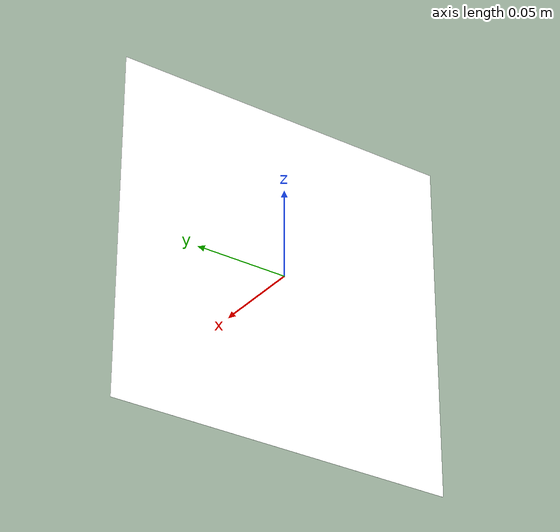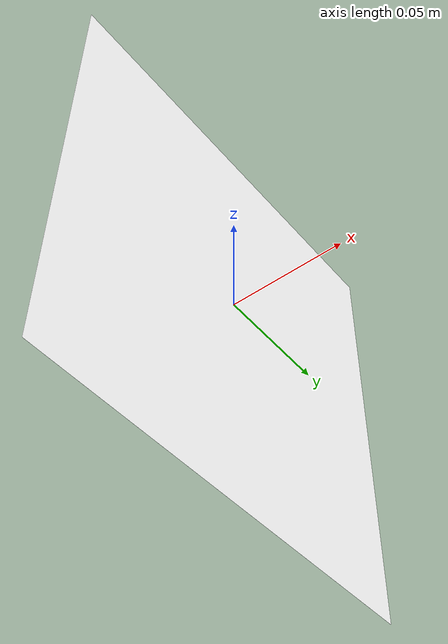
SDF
<?xml version="1.0"?>
<sdf version="1.6">
  <model name="AprilTag">
    <pose>0 0 0 0 0 0</pose>
    <link name="AprilTag">
      <collision name="body_collision">
        <geometry>
          <box>
            <size>1 1 1</size>
          </box>
        </geometry>
      </collision>
      <pose frame=''>0 0 0 0 0 3.14</pose>
      <visual name="body_visual">
        <geometry>
          <box>
            <size>1e-05 0.188 0.188</size>
          </box>
        </geometry>
        <material>
              <script>
                  <uri>model://aprilTag/materials/scripts</uri>
                  <uri>model://aprilTag/materials/textures</uri>
                  <name>TagTexture</name>
              </script>
       <ambient>1 1 1 1</ambient>
       <diffuse>1 1 1 1</diffuse>
       <specular>0 0 0 1</specular>
       <emissive>1 1 1 0</emissive>
       <shader type='vertex'>
         <normal_map>__default__</normal_map>
       </shader>
     </material>
      </visual>
    </link>
  </model>
</sdf>
